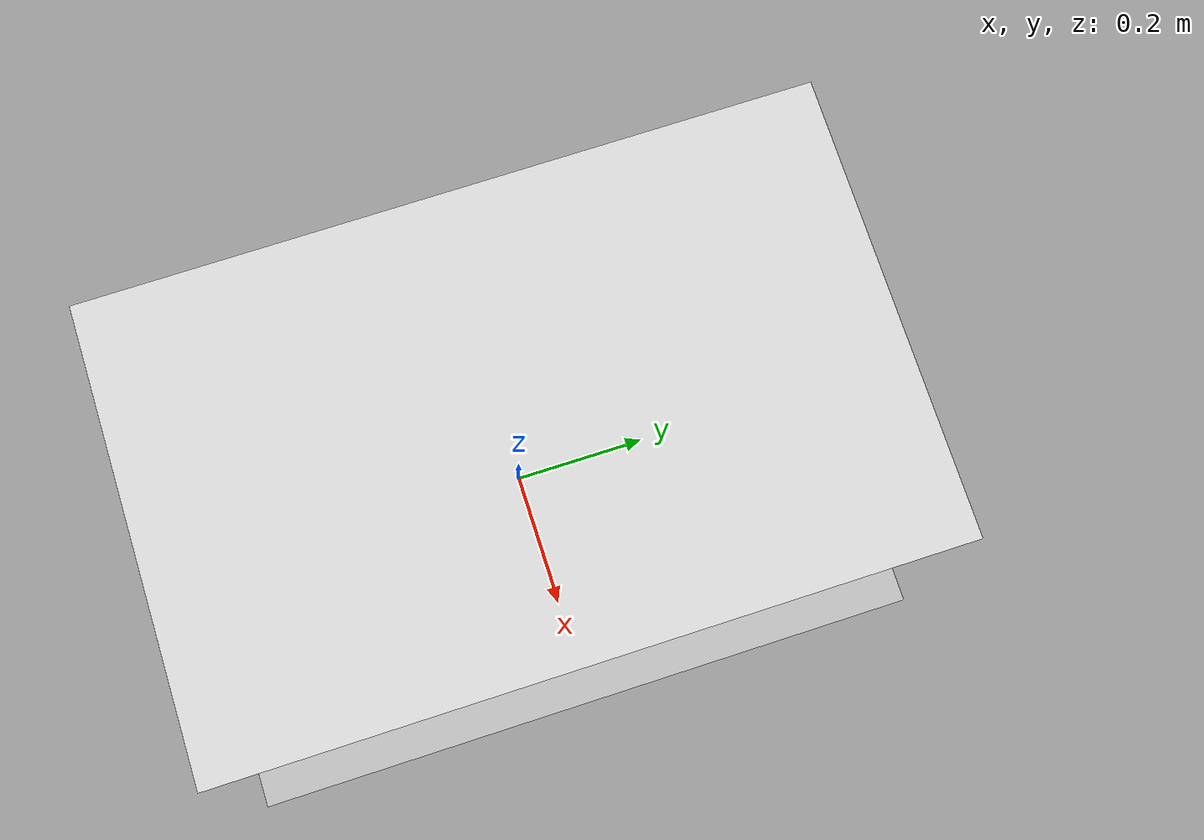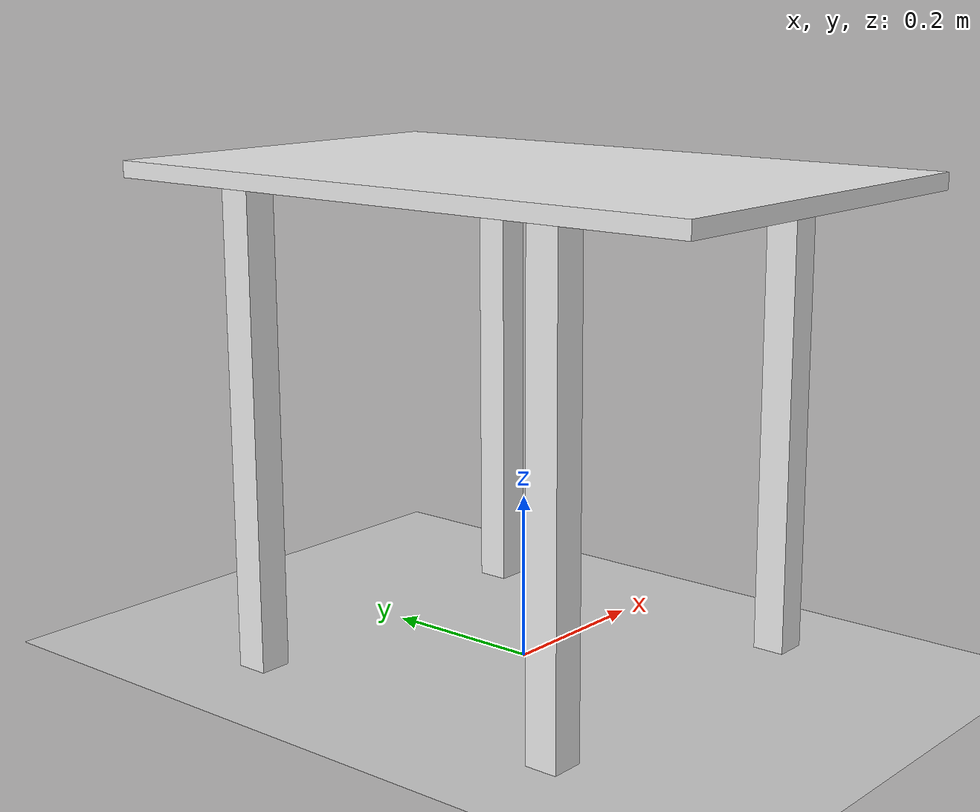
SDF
<?xml version="1.0" ?>

<sdf version="1.6">

  <world name="ur5_robot_base">

    <gravity>0 0 -9.81</gravity>
    <physics name="default_physics" default="0" type="ode">
      <max_step_size>0.0001</max_step_size>
      <real_time_factor>0</real_time_factor>
      <ode>
        <solver>
          <type>world</type>
        </solver>
      </ode>
      <real_time_update_rate>0</real_time_update_rate>
    </physics>

    <scene>
      <ambient>0.4 0.4 0.4 1</ambient>
      <background>0.7 0.7 0.7 1</background>
      <shadows>1</shadows>
    </scene>

    <!-- Light Source -->
    <include>
      <uri>model://sun</uri>
    </include>

    <!-- A ground plane -->
    <include>
      <uri>model://ground_plane</uri>
      <pose>0 0 0 0 0 0</pose>
    </include>

    <!-- The robot base -->
    <model name="ur5_base">
      <include>
        <uri>model://ur5_base</uri>
        <pose>0 0 0 0 0 0</pose>
      </include>
    </model>

  </world>
</sdf>

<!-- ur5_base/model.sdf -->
<sdf version="1.6">
  <model name="ur5_base">
    <static>true</static>

    <link name="top_plate">
      <pose>0 0 0.58 0 0 0</pose>
      <collision name="top_plate_collision">
        <geometry>
          <box>
            <size>0.5 0.8 0.02</size>
          </box>
        </geometry>
        <surface>
          <contact>
            <collide_bitmask>0x01</collide_bitmask>
          </contact>
        </surface>
      </collision>
      <visual name="top_plate_visual">
        <geometry>
          <box>
            <size>0.5 0.8 0.02</size>
          </box>
        </geometry>
        <material>
          <script>
            <uri>file://media/materials/scripts/gazebo.material</uri>
            <name>Gazebo/White</name>
          </script>
        </material>
      </visual>
    </link>
    <link name="leg1">
      <pose>0.22 0.22 0.285 0 0 0</pose>
      <collision name="leg1_collision">
        <geometry>
          <box>
            <size>0.04 0.04 0.57</size>
          </box>
        </geometry>
      </collision>
      <visual name="leg1_visual">
        <geometry>
          <box>
            <size>0.04 0.04 0.57</size>
          </box>
        </geometry>
        <material>
          <script>
            <uri>file://media/materials/scripts/gazebo.material</uri>
            <name>Gazebo/White</name>
          </script>
        </material>
      </visual>
    </link>
    <link name="leg2">
      <pose>-0.22 0.22 0.285 0 0 0</pose>
      <collision name="leg2_collision">
        <geometry>
          <box>
            <size>0.04 0.04 0.57</size>
          </box>
        </geometry>
      </collision>
      <visual name="leg2_visual">
        <geometry>
          <box>
            <size>0.04 0.04 0.57</size>
          </box>
        </geometry>
        <material>
          <script>
            <uri>file://media/materials/scripts/gazebo.material</uri>
            <name>Gazebo/White</name>
          </script>
        </material>
      </visual>
    </link>
    <link name="leg3">
      <pose>0.22 -0.22 0.285 0 0 0</pose>
      <collision name="leg3_collision">
        <geometry>
          <box>
            <size>0.04 0.04 0.57</size>
          </box>
        </geometry>
      </collision>
      <visual name="leg3_visual">
        <geometry>
          <box>
            <size>0.04 0.04 0.57</size>
          </box>
        </geometry>
        <material>
          <script>
            <uri>file://media/materials/scripts/gazebo.material</uri>
            <name>Gazebo/White</name>
          </script>
        </material>
      </visual>
    </link>
    <link name="leg4">
      <pose>-0.22 -0.22 0.285 0 0 0</pose>
      <collision name="leg4_collision">
        <geometry>
          <box>
            <size>0.04 0.04 0.57</size>
          </box>
        </geometry>
      </collision>
      <visual name="leg4_visual">
        <geometry>
          <box>
            <size>0.04 0.04 0.57</size>
          </box>
        </geometry>
        <material>
          <script>
            <uri>file://media/materials/scripts/gazebo.material</uri>
            <name>Gazebo/White</name>
          </script>
        </material>
      </visual>
    </link>
  </model>
</sdf>
